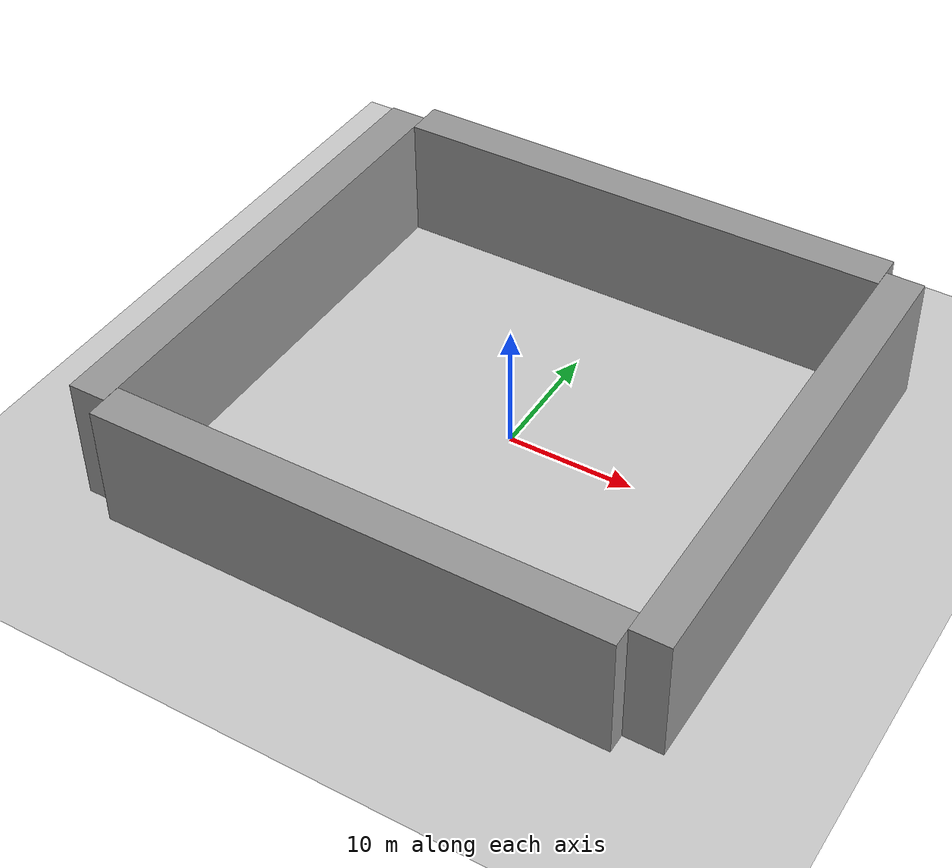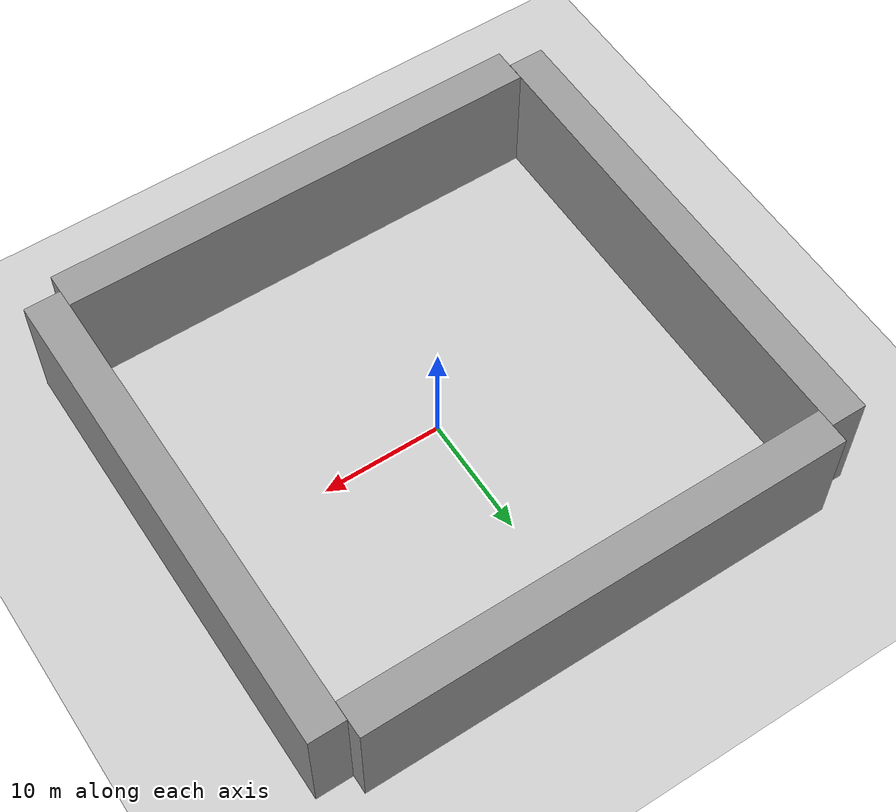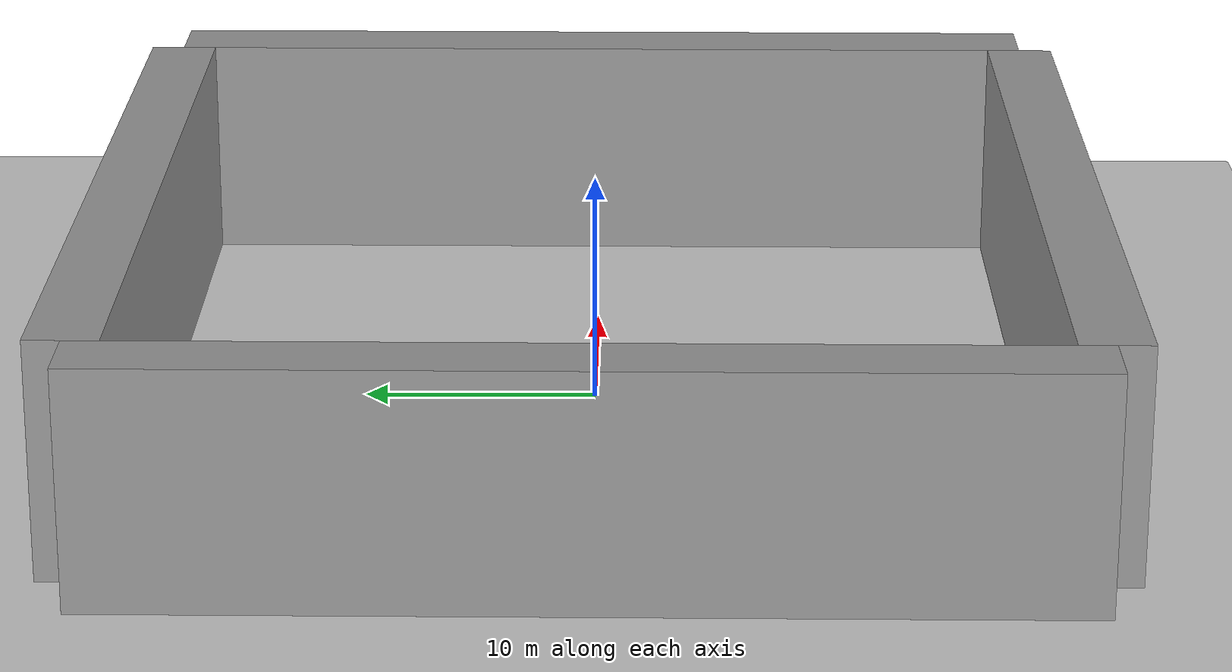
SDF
<sdf version="1.6">
 <world name="vrc_task_1">
  <scene><ambient>0.4 0.4 0.4 1</ambient><background>0.7 0.7 0.7 1</background><shadows>1</shadows></scene>
  <physics name="default_physics" default="0" type="ode">
   <ode>
    <solver>
     <type>quick</type>
     <iters>10</iters>
     <sor>1</sor>
     <use_dynamic_moi_rescaling>0</use_dynamic_moi_rescaling>
    </solver>
    <constraints>
     <cfm>0</cfm>
     <erp>0.2</erp>
     <contact_max_correcting_vel>100</contact_max_correcting_vel>
     <contact_surface_layer>0.001</contact_surface_layer>
    </constraints>
   </ode>
   <max_step_size>0.004</max_step_size>
   <real_time_factor>1</real_time_factor>
   <real_time_update_rate>250</real_time_update_rate>
  </physics>
  <light name="sun" type="directional">
   <pose>0 0 10 0 -0 0</pose>
   <diffuse>0.8 0.8 0.8 1</diffuse>
   <specular>0.2 0.2 0.2 1</specular>
   <attenuation>
    <range>1000</range>
    <constant>0.9</constant>
    <linear>0.01</linear>
    <quadratic>0.001</quadratic>
   </attenuation>
   <direction>-0.5 0.1 -0.9</direction>
  </light>
  <gravity>0 0 -9.8066</gravity>
  <magnetic_field>6e-06 2.3e-05 -4.2e-05</magnetic_field>
  <atmosphere type="adiabatic"/>
  <audio><device>default</device></audio>
  <spherical_coordinates>
   <surface_model>EARTH_WGS84</surface_model>
   <latitude_deg>0</latitude_deg>
   <longitude_deg>0</longitude_deg>
   <elevation>0</elevation>
   <heading_deg>0</heading_deg>
  </spherical_coordinates>
  <model name="ground_plane">
   <static>1</static>
   <link name="link">
    <collision name="collision">
     <geometry><plane><normal>0 0 1</normal><size>100 100</size></plane></geometry>
     <surface><friction><ode><mu>100</mu><mu2>50</mu2></ode></friction></surface>
    </collision>
    <visual name="visual">
     <cast_shadows>0</cast_shadows>
     <geometry><plane><normal>0 0 1</normal><size>100 100</size></plane></geometry>
     <material>
      <script><uri>file://media/materials/scripts/gazebo.material</uri><name>Gazebo/Grey</name></script>
     </material>
    </visual>
   </link>
   <pose>2.41675 -0.571224 0 0 -0 0</pose>
  </model>
  <model name="box_40">
   <link name="link_0">
    <inertial>
     <mass>120</mass>
     <inertia><ixx>1090</ixx><ixy>0</ixy><ixz>0</ixz><iyy>17000</iyy><iyz>0</iyz><izz>16090</izz></inertia>
    </inertial>
    <pose>0 20 0 0 -0 0</pose>
    <visual name="visual">
     <geometry><box><size>40 3 10</size></box></geometry>
     <material>
      <lighting>1</lighting>
      <script><uri>file://media/materials/scripts/gazebo.material</uri><name>Gazebo/Grey</name></script>
      <shader type="vertex"><normal_map>__default__</normal_map></shader>
      <ambient>0.3 0.3 0.3 1</ambient>
      <diffuse>0.7 0.7 0.7 1</diffuse>
      <specular>0.01 0.01 0.01 1</specular>
      <emissive>0 0 0 1</emissive>
     </material>
    </visual>
    <collision name="collision">
     <geometry><box><size>40 3 10</size></box></geometry>
     <surface>
      <friction>
       <ode><mu>1</mu><mu2>1</mu2><fdir1>0 0 0</fdir1><slip1>0</slip1><slip2>0</slip2></ode>
       <torsional>
        <coefficient>1</coefficient>
        <patch_radius>0</patch_radius>
        <surface_radius>0</surface_radius>
        <use_patch_radius>1</use_patch_radius>
        <ode><slip>0</slip></ode>
       </torsional>
      </friction>
      <bounce><restitution_coefficient>0</restitution_coefficient><threshold>1e+06</threshold></bounce>
      <contact>
       <collide_without_contact>0</collide_without_contact>
       <collide_without_contact_bitmask>1</collide_without_contact_bitmask>
       <collide_bitmask>1</collide_bitmask>
       <ode>
        <soft_cfm>0</soft_cfm>
        <soft_erp>0.2</soft_erp>
        <kp>1e+13</kp>
        <kd>1</kd>
        <max_vel>0.01</max_vel>
        <min_depth>0</min_depth>
       </ode>
       <bullet>
        <split_impulse>1</split_impulse>
        <split_impulse_penetration_threshold>-0.01</split_impulse_penetration_threshold>
        <soft_cfm>0</soft_cfm>
        <soft_erp>0.2</soft_erp>
        <kp>1e+13</kp>
        <kd>1</kd>
       </bullet>
      </contact>
     </surface>
    </collision>
   </link>
   <link name="link_0_clone">
    <inertial>
     <mass>120</mass>
     <inertia><ixx>1090</ixx><ixy>0</ixy><ixz>0</ixz><iyy>17000</iyy><iyz>0</iyz><izz>16090</izz></inertia>
    </inertial>
    <pose>0 -20 0 0 -0 0</pose>
    <visual name="visual">
     <geometry><box><size>40 3 10</size></box></geometry>
     <material>
      <lighting>1</lighting>
      <script><uri>file://media/materials/scripts/gazebo.material</uri><name>Gazebo/Grey</name></script>
      <shader type="vertex"><normal_map>__default__</normal_map></shader>
      <ambient>0.3 0.3 0.3 1</ambient>
      <diffuse>0.7 0.7 0.7 1</diffuse>
      <specular>0.01 0.01 0.01 1</specular>
      <emissive>0 0 0 1</emissive>
     </material>
    </visual>
    <collision name="collision">
     <geometry><box><size>40 3 10</size></box></geometry>
     <surface>
      <friction>
       <ode><mu>1</mu><mu2>1</mu2><fdir1>0 0 0</fdir1><slip1>0</slip1><slip2>0</slip2></ode>
       <torsional>
        <coefficient>1</coefficient>
        <patch_radius>0</patch_radius>
        <surface_radius>0</surface_radius>
        <use_patch_radius>1</use_patch_radius>
        <ode><slip>0</slip></ode>
       </torsional>
      </friction>
      <bounce><restitution_coefficient>0</restitution_coefficient><threshold>1e+06</threshold></bounce>
      <contact>
       <collide_without_contact>0</collide_without_contact>
       <collide_without_contact_bitmask>1</collide_without_contact_bitmask>
       <collide_bitmask>1</collide_bitmask>
       <ode>
        <soft_cfm>0</soft_cfm>
        <soft_erp>0.2</soft_erp>
        <kp>1e+13</kp>
        <kd>1</kd>
        <max_vel>0.01</max_vel>
        <min_depth>0</min_depth>
       </ode>
       <bullet>
        <split_impulse>1</split_impulse>
        <split_impulse_penetration_threshold>-0.01</split_impulse_penetration_threshold>
        <soft_cfm>0</soft_cfm>
        <soft_erp>0.2</soft_erp>
        <kp>1e+13</kp>
        <kd>1</kd>
       </bullet>
      </contact>
     </surface>
    </collision>
   </link>
   <link name="link_0_clone_0">
    <inertial>
     <mass>120</mass>
     <inertia><ixx>1090</ixx><ixy>0</ixy><ixz>0</ixz><iyy>17000</iyy><iyz>0</iyz><izz>16090</izz></inertia>
    </inertial>
    <pose>21.5 0 0 0 -0 1.57</pose>
    <visual name="visual">
     <geometry><box><size>40 3 10</size></box></geometry>
     <material>
      <lighting>1</lighting>
      <script><uri>file://media/materials/scripts/gazebo.material</uri><name>Gazebo/Grey</name></script>
      <shader type="vertex"><normal_map>__default__</normal_map></shader>
      <ambient>0.3 0.3 0.3 1</ambient>
      <diffuse>0.7 0.7 0.7 1</diffuse>
      <specular>0.01 0.01 0.01 1</specular>
      <emissive>0 0 0 1</emissive>
     </material>
    </visual>
    <collision name="collision">
     <geometry><box><size>40 3 10</size></box></geometry>
     <surface>
      <friction>
       <ode><mu>1</mu><mu2>1</mu2><fdir1>0 0 0</fdir1><slip1>0</slip1><slip2>0</slip2></ode>
       <torsional>
        <coefficient>1</coefficient>
        <patch_radius>0</patch_radius>
        <surface_radius>0</surface_radius>
        <use_patch_radius>1</use_patch_radius>
        <ode><slip>0</slip></ode>
       </torsional>
      </friction>
      <bounce><restitution_coefficient>0</restitution_coefficient><threshold>1e+06</threshold></bounce>
      <contact>
       <collide_without_contact>0</collide_without_contact>
       <collide_without_contact_bitmask>1</collide_without_contact_bitmask>
       <collide_bitmask>1</collide_bitmask>
       <ode>
        <soft_cfm>0</soft_cfm>
        <soft_erp>0.2</soft_erp>
        <kp>1e+13</kp>
        <kd>1</kd>
        <max_vel>0.01</max_vel>
        <min_depth>0</min_depth>
       </ode>
       <bullet>
        <split_impulse>1</split_impulse>
        <split_impulse_penetration_threshold>-0.01</split_impulse_penetration_threshold>
        <soft_cfm>0</soft_cfm>
        <soft_erp>0.2</soft_erp>
        <kp>1e+13</kp>
        <kd>1</kd>
       </bullet>
      </contact>
     </surface>
    </collision>
   </link>
   <link name="link_0_clone_0_clone">
    <inertial>
     <mass>120</mass>
     <inertia><ixx>1090</ixx><ixy>0</ixy><ixz>0</ixz><iyy>17000</iyy><iyz>0</iyz><izz>16090</izz></inertia>
    </inertial>
    <pose>-21.5 0 0 0 -0 1.57</pose>
    <visual name="visual">
     <geometry><box><size>40 3 10</size></box></geometry>
     <material>
      <lighting>1</lighting>
      <script><uri>file://media/materials/scripts/gazebo.material</uri><name>Gazebo/Grey</name></script>
      <shader type="vertex"><normal_map>__default__</normal_map></shader>
      <ambient>0.3 0.3 0.3 1</ambient>
      <diffuse>0.7 0.7 0.7 1</diffuse>
      <specular>0.01 0.01 0.01 1</specular>
      <emissive>0 0 0 1</emissive>
     </material>
    </visual>
    <collision name="collision">
     <geometry><box><size>40 3 10</size></box></geometry>
     <surface>
      <friction>
       <ode><mu>1</mu><mu2>1</mu2><fdir1>0 0 0</fdir1><slip1>0</slip1><slip2>0</slip2></ode>
       <torsional>
        <coefficient>1</coefficient>
        <patch_radius>0</patch_radius>
        <surface_radius>0</surface_radius>
        <use_patch_radius>1</use_patch_radius>
        <ode><slip>0</slip></ode>
       </torsional>
      </friction>
      <bounce><restitution_coefficient>0</restitution_coefficient><threshold>1e+06</threshold></bounce>
      <contact>
       <collide_without_contact>0</collide_without_contact>
       <collide_without_contact_bitmask>1</collide_without_contact_bitmask>
       <collide_bitmask>1</collide_bitmask>
       <ode>
        <soft_cfm>0</soft_cfm>
        <soft_erp>0.2</soft_erp>
        <kp>1e+13</kp>
        <kd>1</kd>
        <max_vel>0.01</max_vel>
        <min_depth>0</min_depth>
       </ode>
       <bullet>
        <split_impulse>1</split_impulse>
        <split_impulse_penetration_threshold>-0.01</split_impulse_penetration_threshold>
        <soft_cfm>0</soft_cfm>
        <soft_erp>0.2</soft_erp>
        <kp>1e+13</kp>
        <kd>1</kd>
       </bullet>
      </contact>
     </surface>
    </collision>
   </link>
   <static>0</static>
   <pose>-8e-05 -1.6e-05 4.99994 3e-06 -0 -4e-06</pose>
  </model>
 </world>
</sdf>
